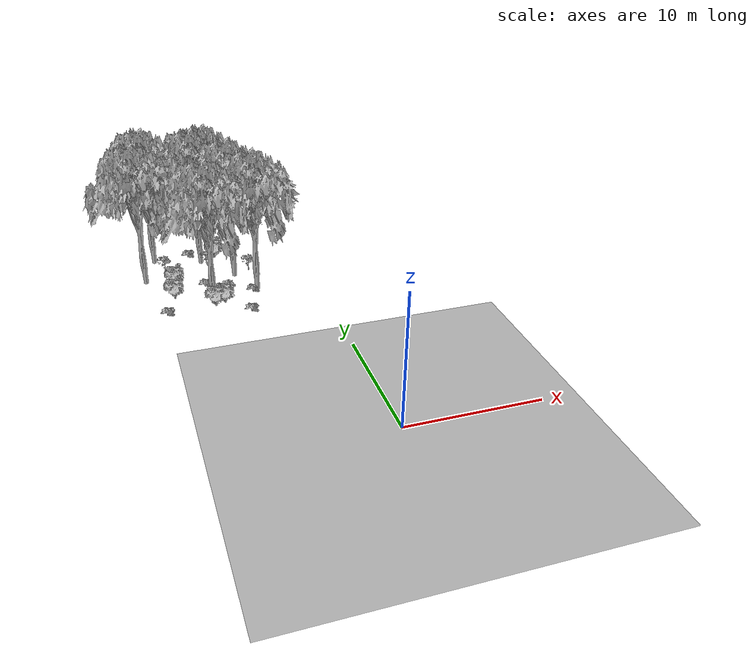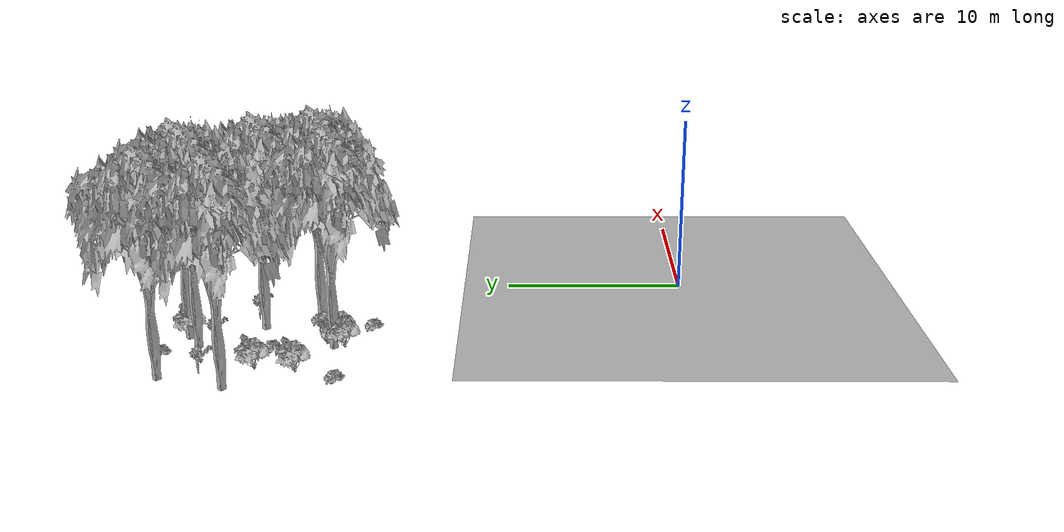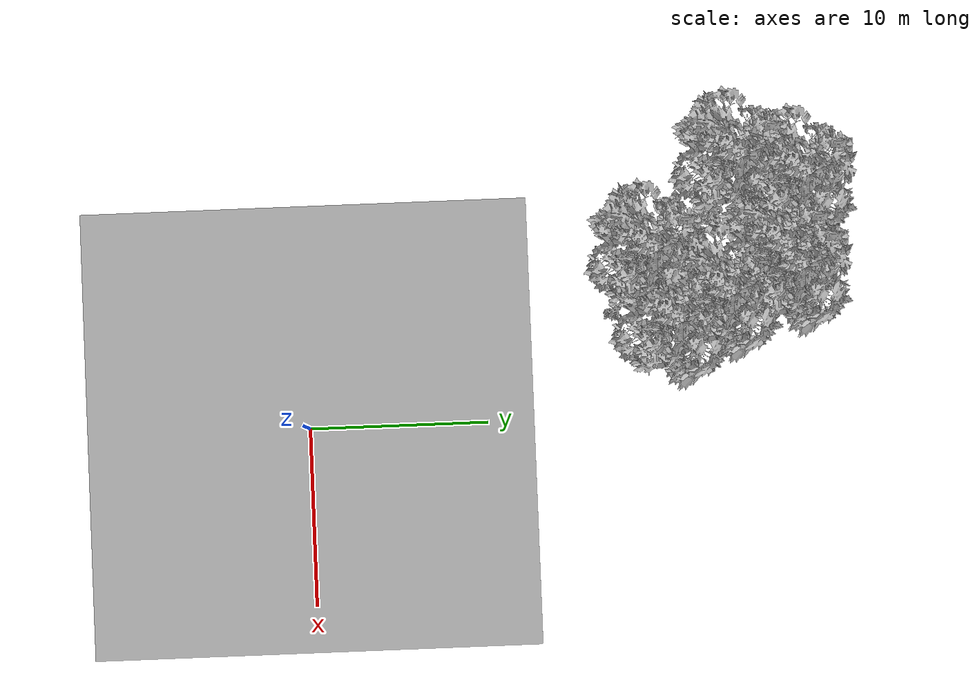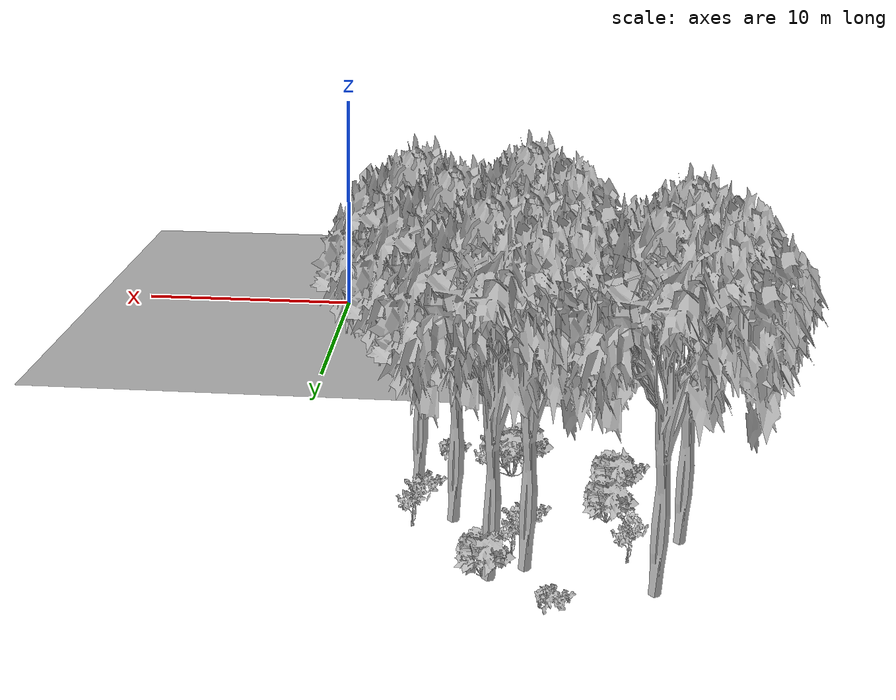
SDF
<sdf version="1.7">
 <world name="default">
  <model name="ground_plane">
   <static>1</static>
   <link name="link">
    <collision name="collision">
     <pose>-50 0 0 0 -0 0</pose>
     <geometry><plane><normal>0 0 1</normal><size>80 80</size></plane></geometry>
     <surface><contact><ode><min_depth>0.01</min_depth><max_vel>0</max_vel></ode></contact></surface>
    </collision>
    <visual name="grass">
     <cast_shadows>0</cast_shadows>
     <geometry>
      <mesh>
       <scale>0.46714285714285714 0.46714285714285714 0.1</scale>
       <uri>file://grass_plane/meshes/grass_plane.dae</uri>
      </mesh>
     </geometry>
    </visual>
   </link>
  </model>
  <model name="Tree 147">
   <static>1</static>
   <pose>-7.623935476485375 26.916508859687283 0 1.57079 -0 0</pose>
   <link name="link">
    <collision name="collision">
     <geometry><mesh><scale>3.5 5 3.5</scale><uri>model://tree_2/meshes/tree_2.obj</uri></mesh></geometry>
    </collision>
    <visual name="visual">
     <geometry><mesh><scale>3.5 5 3.5</scale><uri>model://tree_2/meshes/tree_2.obj</uri></mesh></geometry>
    </visual>
   </link>
  </model>
  <model name="Tree 183">
   <static>1</static>
   <pose>-4.9914677020793405 20.25129491135104 0 1.57079 -0 0</pose>
   <link name="link">
    <collision name="collision">
     <geometry><mesh><scale>3.5 5 3.5</scale><uri>model://tree_2/meshes/tree_2.obj</uri></mesh></geometry>
    </collision>
    <visual name="visual">
     <geometry><mesh><scale>3.5 5 3.5</scale><uri>model://tree_2/meshes/tree_2.obj</uri></mesh></geometry>
    </visual>
   </link>
  </model>
  <model name="Tree 296">
   <static>1</static>
   <pose>-8.816255235786159 19.039516671747947 0 1.57079 -0 0</pose>
   <link name="link">
    <collision name="collision">
     <geometry><mesh><scale>3.5 5 3.5</scale><uri>model://tree_2/meshes/tree_2.obj</uri></mesh></geometry>
    </collision>
    <visual name="visual">
     <geometry><mesh><scale>3.5 5 3.5</scale><uri>model://tree_2/meshes/tree_2.obj</uri></mesh></geometry>
    </visual>
   </link>
  </model>
  <model name="Tree 303">
   <static>1</static>
   <pose>-13.692468740338281 23.868831777044775 0 1.57079 -0 0</pose>
   <link name="link">
    <collision name="collision">
     <geometry><mesh><scale>3.5 5 3.5</scale><uri>model://tree_2/meshes/tree_2.obj</uri></mesh></geometry>
    </collision>
    <visual name="visual">
     <geometry><mesh><scale>3.5 5 3.5</scale><uri>model://tree_2/meshes/tree_2.obj</uri></mesh></geometry>
    </visual>
   </link>
  </model>
  <model name="Tree 563">
   <static>1</static>
   <pose>-12.606361450047295 27.36250658172375 0 1.57079 -0 0</pose>
   <link name="link">
    <collision name="collision">
     <geometry><mesh><scale>3.5 5 3.5</scale><uri>model://tree_2/meshes/tree_2.obj</uri></mesh></geometry>
    </collision>
    <visual name="visual">
     <geometry><mesh><scale>3.5 5 3.5</scale><uri>model://tree_2/meshes/tree_2.obj</uri></mesh></geometry>
    </visual>
   </link>
  </model>
  <model name="Tree 582">
   <static>1</static>
   <pose>-6.358556033911704 23.071468588544732 0 1.57079 -0 0</pose>
   <link name="link">
    <collision name="collision">
     <geometry><mesh><scale>3.5 5 3.5</scale><uri>model://tree_2/meshes/tree_2.obj</uri></mesh></geometry>
    </collision>
    <visual name="visual">
     <geometry><mesh><scale>3.5 5 3.5</scale><uri>model://tree_2/meshes/tree_2.obj</uri></mesh></geometry>
    </visual>
   </link>
  </model>
  <model name="Tree 629">
   <static>1</static>
   <pose>-8.720678048452324 26.19466748240623 0 1.57079 -0 0</pose>
   <link name="link">
    <collision name="collision">
     <geometry><mesh><scale>3.5 5 3.5</scale><uri>model://tree_2/meshes/tree_2.obj</uri></mesh></geometry>
    </collision>
    <visual name="visual">
     <geometry><mesh><scale>3.5 5 3.5</scale><uri>model://tree_2/meshes/tree_2.obj</uri></mesh></geometry>
    </visual>
   </link>
  </model>
  <model name="Bush 47">
   <static>1</static>
   <pose>-8.639970395738562 18.480969146808647 0 1.57079 -0 0</pose>
   <link name="link">
    <collision name="collision">
     <geometry><mesh><scale>2 2 2</scale><uri>model://bush_1/meshes/bush_1.obj</uri></mesh></geometry>
     <surface><contact><collide_without_contact>false</collide_without_contact></contact></surface>
    </collision>
    <visual name="visual">
     <geometry><mesh><scale>2 2 2</scale><uri>model://bush_1/meshes/bush_1.obj</uri></mesh></geometry>
    </visual>
   </link>
  </model>
  <model name="Bush 76">
   <static>1</static>
   <pose>-12.461892190758828 18.523265849830246 0 1.57079 -0 0</pose>
   <link name="link">
    <collision name="collision">
     <geometry><mesh><scale>2 2 2</scale><uri>model://bush_2/meshes/bush_2.obj</uri></mesh></geometry>
     <surface><contact><collide_without_contact>false</collide_without_contact></contact></surface>
    </collision>
    <visual name="visual">
     <geometry><mesh><scale>2 2 2</scale><uri>model://bush_2/meshes/bush_2.obj</uri></mesh></geometry>
    </visual>
   </link>
  </model>
  <model name="Bush 89">
   <static>1</static>
   <pose>-9.486957918644208 28.003635026506174 0 1.57079 -0 0</pose>
   <link name="link">
    <collision name="collision">
     <geometry><mesh><scale>2 2 2</scale><uri>model://bush_2/meshes/bush_2.obj</uri></mesh></geometry>
     <surface><contact><collide_without_contact>false</collide_without_contact></contact></surface>
    </collision>
    <visual name="visual">
     <geometry><mesh><scale>2 2 2</scale><uri>model://bush_2/meshes/bush_2.obj</uri></mesh></geometry>
    </visual>
   </link>
  </model>
  <model name="Bush 117">
   <static>1</static>
   <pose>-11.82004052607104 25.485893762348454 0 1.57079 -0 0</pose>
   <link name="link">
    <collision name="collision">
     <geometry><mesh><scale>2 2 2</scale><uri>model://bush_5/meshes/bush_5.obj</uri></mesh></geometry>
     <surface><contact><collide_without_contact>false</collide_without_contact></contact></surface>
    </collision>
    <visual name="visual">
     <geometry><mesh><scale>2 2 2</scale><uri>model://bush_5/meshes/bush_5.obj</uri></mesh></geometry>
    </visual>
   </link>
  </model>
  <model name="Bush 131">
   <static>1</static>
   <pose>-8.194488510173723 25.49430895455346 0 1.57079 -0 0</pose>
   <link name="link">
    <collision name="collision">
     <geometry><mesh><scale>2 2 2</scale><uri>model://bush_5/meshes/bush_5.obj</uri></mesh></geometry>
     <surface><contact><collide_without_contact>false</collide_without_contact></contact></surface>
    </collision>
    <visual name="visual">
     <geometry><mesh><scale>2 2 2</scale><uri>model://bush_5/meshes/bush_5.obj</uri></mesh></geometry>
    </visual>
   </link>
  </model>
  <model name="Bush 196">
   <static>1</static>
   <pose>-4.925068447207522 23.704347379582238 0 1.57079 -0 0</pose>
   <link name="link">
    <collision name="collision">
     <geometry><mesh><scale>2 2 2</scale><uri>model://bush_5/meshes/bush_5.obj</uri></mesh></geometry>
     <surface><contact><collide_without_contact>false</collide_without_contact></contact></surface>
    </collision>
    <visual name="visual">
     <geometry><mesh><scale>2 2 2</scale><uri>model://bush_5/meshes/bush_5.obj</uri></mesh></geometry>
    </visual>
   </link>
  </model>
  <model name="Bush 215">
   <static>1</static>
   <pose>-11.639581093620006 20.613526417708968 0 1.57079 -0 0</pose>
   <link name="link">
    <collision name="collision">
     <geometry><mesh><scale>2 2 2</scale><uri>model://bush_1/meshes/bush_1.obj</uri></mesh></geometry>
     <surface><contact><collide_without_contact>false</collide_without_contact></contact></surface>
    </collision>
    <visual name="visual">
     <geometry><mesh><scale>2 2 2</scale><uri>model://bush_1/meshes/bush_1.obj</uri></mesh></geometry>
    </visual>
   </link>
  </model>
  <model name="Bush 241">
   <static>1</static>
   <pose>-5.246891682429656 20.303072344518384 0 1.57079 -0 0</pose>
   <link name="link">
    <collision name="collision">
     <geometry><mesh><scale>2 2 2</scale><uri>model://bush_2/meshes/bush_2.obj</uri></mesh></geometry>
     <surface><contact><collide_without_contact>false</collide_without_contact></contact></surface>
    </collision>
    <visual name="visual">
     <geometry><mesh><scale>2 2 2</scale><uri>model://bush_2/meshes/bush_2.obj</uri></mesh></geometry>
    </visual>
   </link>
  </model>
  <model name="Bush 297">
   <static>1</static>
   <pose>-8.146809675672706 19.409170200382498 0 1.57079 -0 0</pose>
   <link name="link">
    <collision name="collision">
     <geometry><mesh><scale>2 2 2</scale><uri>model://bush_4/meshes/bush_4.obj</uri></mesh></geometry>
     <surface><contact><collide_without_contact>false</collide_without_contact></contact></surface>
    </collision>
    <visual name="visual">
     <geometry><mesh><scale>2 2 2</scale><uri>model://bush_4/meshes/bush_4.obj</uri></mesh></geometry>
    </visual>
   </link>
  </model>
  <model name="Bush 332">
   <static>1</static>
   <pose>-8.874420501108013 22.28928656827609 0 1.57079 -0 0</pose>
   <link name="link">
    <collision name="collision">
     <geometry><mesh><scale>2 2 2</scale><uri>model://bush_2/meshes/bush_2.obj</uri></mesh></geometry>
     <surface><contact><collide_without_contact>false</collide_without_contact></contact></surface>
    </collision>
    <visual name="visual">
     <geometry><mesh><scale>2 2 2</scale><uri>model://bush_2/meshes/bush_2.obj</uri></mesh></geometry>
    </visual>
   </link>
  </model>
  <model name="Bush 430">
   <static>1</static>
   <pose>-11.320449410577663 22.74340879107318 0 1.57079 -0 0</pose>
   <link name="link">
    <collision name="collision">
     <geometry><mesh><scale>2 2 2</scale><uri>model://bush_1/meshes/bush_1.obj</uri></mesh></geometry>
     <surface><contact><collide_without_contact>false</collide_without_contact></contact></surface>
    </collision>
    <visual name="visual">
     <geometry><mesh><scale>2 2 2</scale><uri>model://bush_1/meshes/bush_1.obj</uri></mesh></geometry>
    </visual>
   </link>
  </model>
  <model name="Bush 507">
   <static>1</static>
   <pose>-6.002671714681192 17.266156908885193 0 1.57079 -0 0</pose>
   <link name="link">
    <collision name="collision">
     <geometry><mesh><scale>2 2 2</scale><uri>model://bush_2/meshes/bush_2.obj</uri></mesh></geometry>
     <surface><contact><collide_without_contact>false</collide_without_contact></contact></surface>
    </collision>
    <visual name="visual">
     <geometry><mesh><scale>2 2 2</scale><uri>model://bush_2/meshes/bush_2.obj</uri></mesh></geometry>
    </visual>
   </link>
  </model>
  <model name="Bush 508">
   <static>1</static>
   <pose>-7.3223404616211205 26.882889077422732 0 1.57079 -0 0</pose>
   <link name="link">
    <collision name="collision">
     <geometry><mesh><scale>2 2 2</scale><uri>model://bush_1/meshes/bush_1.obj</uri></mesh></geometry>
     <surface><contact><collide_without_contact>false</collide_without_contact></contact></surface>
    </collision>
    <visual name="visual">
     <geometry><mesh><scale>2 2 2</scale><uri>model://bush_1/meshes/bush_1.obj</uri></mesh></geometry>
    </visual>
   </link>
  </model>
  <model name="Bush 514">
   <static>1</static>
   <pose>-7.864193421253191 18.756508573506338 0 1.57079 -0 0</pose>
   <link name="link">
    <collision name="collision">
     <geometry><mesh><scale>2 2 2</scale><uri>model://bush_1/meshes/bush_1.obj</uri></mesh></geometry>
     <surface><contact><collide_without_contact>false</collide_without_contact></contact></surface>
    </collision>
    <visual name="visual">
     <geometry><mesh><scale>2 2 2</scale><uri>model://bush_1/meshes/bush_1.obj</uri></mesh></geometry>
    </visual>
   </link>
  </model>
  <model name="Bush 529">
   <static>1</static>
   <pose>-7.330769487155731 19.75637255020459 0 1.57079 -0 0</pose>
   <link name="link">
    <collision name="collision">
     <geometry><mesh><scale>2 2 2</scale><uri>model://bush_5/meshes/bush_5.obj</uri></mesh></geometry>
     <surface><contact><collide_without_contact>false</collide_without_contact></contact></surface>
    </collision>
    <visual name="visual">
     <geometry><mesh><scale>2 2 2</scale><uri>model://bush_5/meshes/bush_5.obj</uri></mesh></geometry>
    </visual>
   </link>
  </model>
 </world>
</sdf>
